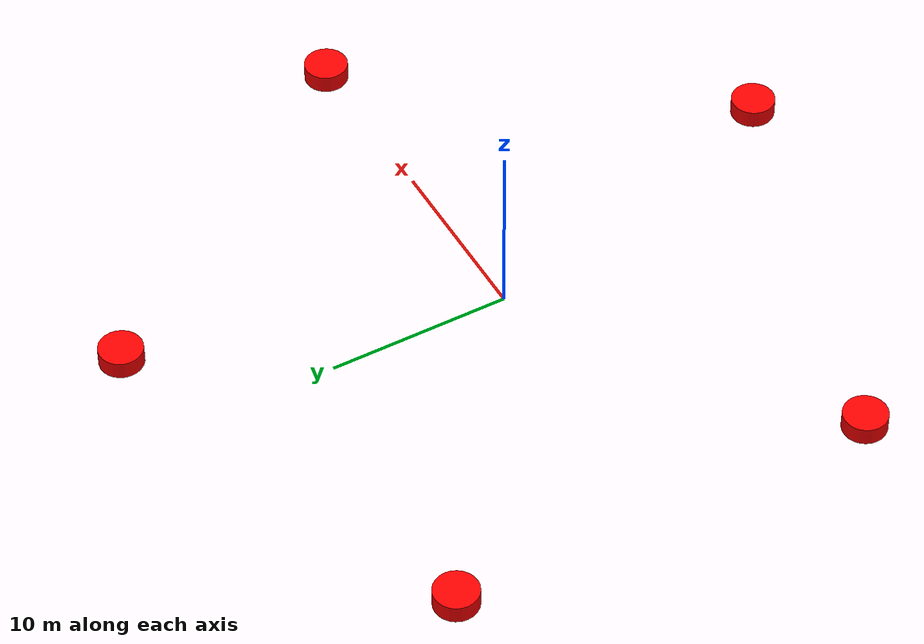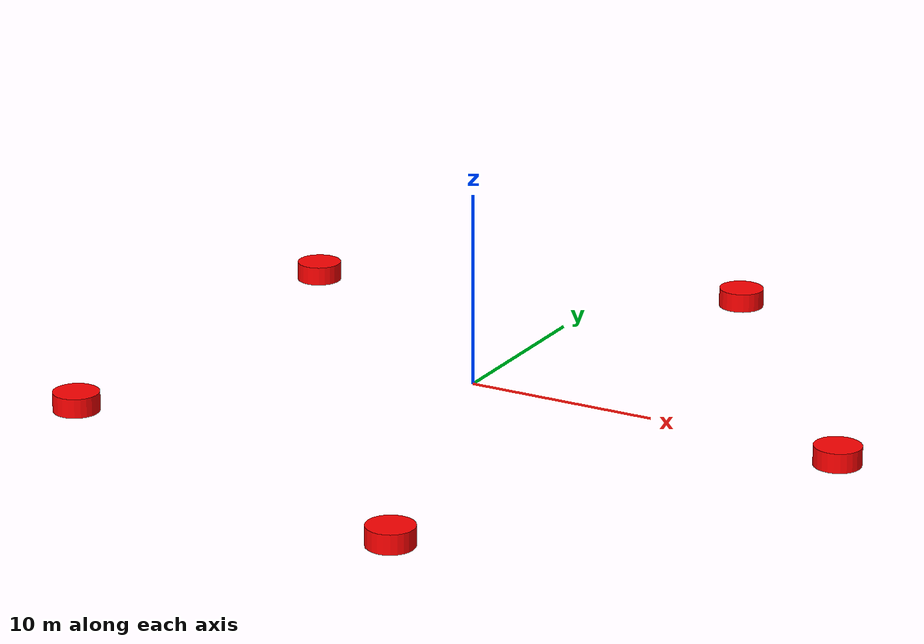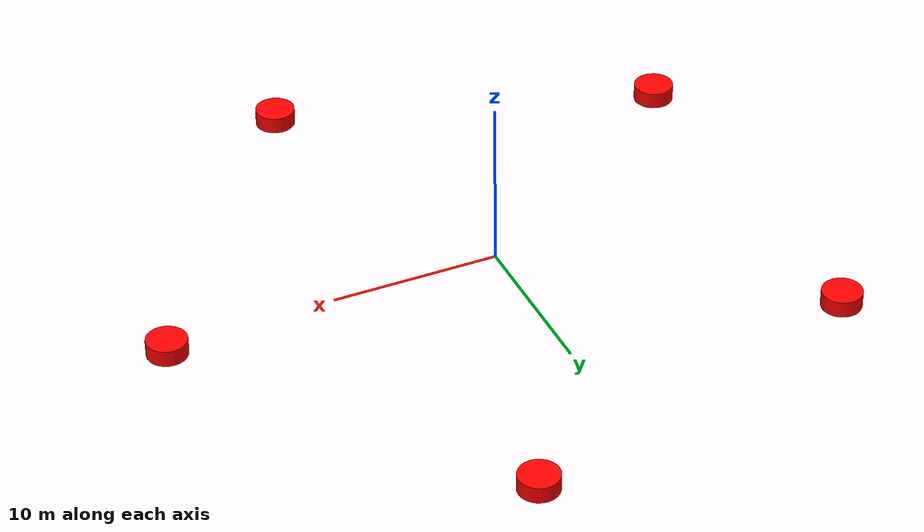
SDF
<sdf version="1.9">
 <world name="sydney_regatta">
  <physics name="4ms" type="dart">
   <max_step_size>0.004</max_step_size>
   <real_time_factor>1.0</real_time_factor>
  </physics>
  <plugin filename="gz-sim-physics-system" name="gz::sim::systems::Physics"/>
  <plugin filename="gz-sim-user-commands-system" name="gz::sim::systems::UserCommands"/>
  <plugin filename="gz-sim-sensors-system" name="gz::sim::systems::Sensors">
   <render_engine>ogre2</render_engine>
   <disable_on_drained_battery>true</disable_on_drained_battery>
  </plugin>
  <plugin filename="gz-sim-imu-system" name="gz::sim::systems::Imu"/>
  <plugin filename="gz-sim-magnetometer-system" name="gz::sim::systems::Magnetometer"/>
  <plugin filename="gz-sim-forcetorque-system" name="gz::sim::systems::ForceTorque"/>
  <plugin filename="gz-sim-particle-emitter2-system" name="gz::sim::systems::ParticleEmitter2"/>
  <plugin filename="gz-sim-scene-broadcaster-system" name="gz::sim::systems::SceneBroadcaster"/>
  <plugin filename="gz-sim-contact-system" name="gz::sim::systems::Contact"/>
  <plugin filename="gz-sim-navsat-system" name="gz::sim::systems::NavSat"/>
  <scene><grid>false</grid><ambient>1.0 1.0 1.0</ambient><background>0.8 0.8 0.8</background></scene>
  <spherical_coordinates>
   <surface_model>EARTH_WGS84</surface_model>
   <world_frame_orientation>ENU</world_frame_orientation>
   <latitude_deg>-33.724223</latitude_deg>
   <longitude_deg>150.679736</longitude_deg>
   <elevation>0.0</elevation>
   <heading_deg>0.0</heading_deg>
  </spherical_coordinates>
  <light type="directional" name="sun">
   <pose>0 0 10 0 0 0</pose>
   <diffuse>0.8 0.8 0.8 1</diffuse>
   <specular>0.2 0.2 0.2 1</specular>
   <attenuation>
    <range>1000</range>
    <constant>0.9</constant>
    <linear>0.01</linear>
    <quadratic>0.001</quadratic>
   </attenuation>
   <direction>-0.5 0.1 -0.9</direction>
  </light>
  <plugin filename="libPublisherPlugin.so" name="vrx::PublisherPlugin">
   <message type="gz.msgs.Param" topic="/vrx/wavefield/parameters" every="2.0">params {
          key: "direction"
          value {
            type: DOUBLE
            double_value: 0.0
          }
        }
        params {
          key: "gain"
          value {
            type: DOUBLE
            double_value: 0.0
          }
        }
        params {
          key: "period"
          value {
            type: DOUBLE
            double_value: 5
          }
        }
        params {
          key: "steepness"
          value {
            type: DOUBLE
            double_value: 0
          }
        }</message>
  </plugin>
  <model name="red_buoy_1">
   <static>true</static>
   <pose>20   0  0.0  0 0 0</pose>
   <link name="body">
    <visual name="vis">
     <geometry><cylinder><radius>1.20</radius><length>1.0</length></cylinder></geometry>
     <material><ambient>1 0 0 1</ambient><diffuse>1 0 0 1</diffuse></material>
    </visual>
   </link>
  </model>
  <model name="red_buoy_2">
   <static>true</static>
   <pose>6.18034   19.0211  0.0  0 0 0</pose>
   <link name="body">
    <visual name="vis">
     <geometry><cylinder><radius>1.20</radius><length>1.0</length></cylinder></geometry>
     <material><ambient>1 0 0 1</ambient><diffuse>1 0 0 1</diffuse></material>
    </visual>
   </link>
  </model>
  <model name="red_buoy_3">
   <static>true</static>
   <pose>-16.1803   11.7557  0.0  0 0 0</pose>
   <link name="body">
    <visual name="vis">
     <geometry><cylinder><radius>1.20</radius><length>1.0</length></cylinder></geometry>
     <material><ambient>1 0 0 1</ambient><diffuse>1 0 0 1</diffuse></material>
    </visual>
   </link>
  </model>
  <model name="red_buoy_4">
   <static>true</static>
   <pose>-16.1803  -11.7557  0.0  0 0 0</pose>
   <link name="body">
    <visual name="vis">
     <geometry><cylinder><radius>1.20</radius><length>1.0</length></cylinder></geometry>
     <material><ambient>1 0 0 1</ambient><diffuse>1 0 0 1</diffuse></material>
    </visual>
   </link>
  </model>
  <model name="red_buoy_5">
   <static>true</static>
   <pose>6.18034  -19.0211  0.0  0 0 0</pose>
   <link name="body">
    <visual name="vis">
     <geometry><cylinder><radius>1.20</radius><length>1.0</length></cylinder></geometry>
     <material><ambient>1 0 0 1</ambient><diffuse>1 0 0 1</diffuse></material>
    </visual>
   </link>
  </model>
 </world>
</sdf>
